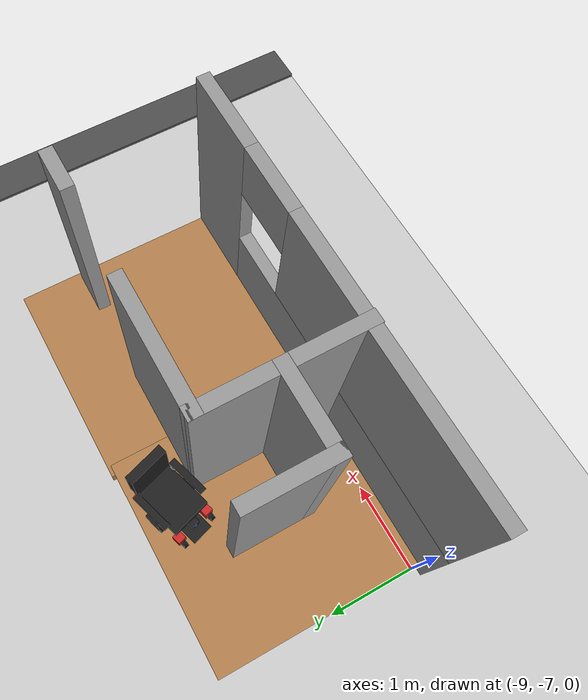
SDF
<sdf version="1.6">
 <world name="default">
  <model name="ground_plane">
   <static>1</static>
   <link name="link">
    <collision name="collision">
     <geometry><plane><normal>0 0 1</normal><size>100 100</size></plane></geometry>
     <surface>
      <contact><collide_bitmask>65535</collide_bitmask></contact>
      <friction><ode><mu>100</mu><mu2>50</mu2></ode></friction>
     </surface>
    </collision>
    <visual name="visual">
     <cast_shadows>0</cast_shadows>
     <geometry><plane><normal>0 0 1</normal><size>100 100</size></plane></geometry>
     <material>
      <script><uri>file://media/materials/scripts/gazebo.material</uri><name>Gazebo/Grey</name></script>
     </material>
    </visual>
   </link>
  </model>
  <model name="my_wheelchair">
   <link name="base_link">
    <inertial>
     <pose>-0.034207 0 0.161841 0 -0 0</pose>
     <mass>1.90002</mass>
     <inertia>
      <ixx>0.262673</ixx>
      <ixy>-2.37357e-19</ixy>
      <ixz>0.0372307</ixz>
      <iyy>0.501077</iyy>
      <iyz>-7.85195e-19</iyz>
      <izz>0.433656</izz>
     </inertia>
    </inertial>
    <collision name="base_link_collision"><geometry><box><size>0.5 0.4 0.2</size></box></geometry></collision>
    <collision name="base_link_fixed_joint_lump__chair_pillar_collision_1">
     <pose>0 0 0.175 0 -0 0</pose>
     <geometry><cylinder><length>0.2</length><radius>0.075</radius></cylinder></geometry>
    </collision>
    <collision name="base_link_fixed_joint_lump__chair_seat_collision_2">
     <pose>0 0 0.275 0 -0 0</pose>
     <geometry><box><size>0.6 0.5 0.1</size></box></geometry>
    </collision>
    <collision name="base_link_fixed_joint_lump__arm_brace_left_collision_3">
     <pose>-0.2 0.225 0.375 0 -0 0</pose>
     <geometry><box><size>0.05 0.025 0.25</size></box></geometry>
    </collision>
    <collision name="base_link_fixed_joint_lump__arm_left_collision_4">
     <pose>0 0.25 0.5 0 -0 0</pose>
     <geometry><box><size>0.45 0.075 0.03</size></box></geometry>
    </collision>
    <collision name="base_link_fixed_joint_lump__arm_brace_right_collision_5">
     <pose>-0.2 -0.225 0.375 0 -0 0</pose>
     <geometry><box><size>0.05 0.025 0.25</size></box></geometry>
    </collision>
    <collision name="base_link_fixed_joint_lump__arm_right_collision_6">
     <pose>0 -0.25 0.5 0 -0 0</pose>
     <geometry><box><size>0.45 0.075 0.03</size></box></geometry>
    </collision>
    <collision name="base_link_fixed_joint_lump__chair_spine_collision_7">
     <pose>-0.3 0 0.375 0 -0 0</pose>
     <geometry><box><size>0.035 0.1 0.2</size></box></geometry>
    </collision>
    <collision name="base_link_fixed_joint_lump__chair_back_collision_8">
     <pose>-0.3 0 0.6 0 -0 0</pose>
     <geometry><box><size>0.2 0.25 0.6</size></box></geometry>
    </collision>
    <collision name="base_link_fixed_joint_lump__foot_rest_collision_9">
     <pose>0.35 0 -0.1 0 -0 0</pose>
     <geometry><box><size>0.2 0.25 0.01</size></box></geometry>
    </collision>
    <collision name="base_link_fixed_joint_lump__hokuyo_main_collision_10">
     <pose>0.3 0 0.1 0 -0 0</pose>
     <geometry><box><size>0.1 0.1 0.1</size></box></geometry>
    </collision>
    <collision name="base_link_fixed_joint_lump__hokuyo_main_pointer_collision_11">
     <pose>0.35 0 0.1 0 -0 0</pose>
     <geometry><sphere><radius>0.02</radius></sphere></geometry>
    </collision>
    <visual name="base_link_visual">
     <geometry><box><size>0.5 0.4 0.2</size></box></geometry>
     <material>
      <script><name>Gazebo/Red</name><uri>file://media/materials/scripts/gazebo.material</uri></script>
     </material>
    </visual>
    <visual name="base_link_fixed_joint_lump__chair_pillar_visual_1">
     <pose>0 0 0.175 0 -0 0</pose>
     <geometry><cylinder><length>0.2</length><radius>0.075</radius></cylinder></geometry>
    </visual>
    <visual name="base_link_fixed_joint_lump__chair_seat_visual_2">
     <pose>0 0 0.275 0 -0 0</pose>
     <geometry><box><size>0.6 0.45 0.1</size></box></geometry>
     <material>
      <script><name>Gazebo/Black</name><uri>file://media/materials/scripts/gazebo.material</uri></script>
     </material>
    </visual>
    <visual name="base_link_fixed_joint_lump__arm_brace_left_visual_3">
     <pose>-0.2 0.225 0.375 0 -0 0</pose>
     <geometry><box><size>0.05 0.03 0.25</size></box></geometry>
    </visual>
    <visual name="base_link_fixed_joint_lump__arm_left_visual_4">
     <pose>0 0.25 0.5 0 -0 0</pose>
     <geometry><box><size>0.45 0.075 0.03</size></box></geometry>
     <material>
      <script><name>Gazebo/Black</name><uri>file://media/materials/scripts/gazebo.material</uri></script>
     </material>
    </visual>
    <visual name="base_link_fixed_joint_lump__arm_brace_right_visual_5">
     <pose>-0.2 -0.225 0.375 0 -0 0</pose>
     <geometry><box><size>0.05 0.03 0.25</size></box></geometry>
    </visual>
    <visual name="base_link_fixed_joint_lump__arm_right_visual_6">
     <pose>0 -0.25 0.5 0 -0 0</pose>
     <geometry><box><size>0.45 0.075 0.03</size></box></geometry>
     <material>
      <script><name>Gazebo/Black</name><uri>file://media/materials/scripts/gazebo.material</uri></script>
     </material>
    </visual>
    <visual name="base_link_fixed_joint_lump__chair_spine_visual_7">
     <pose>-0.3 0 0.375 0 -0 0</pose>
     <geometry><box><size>0.035 0.1 0.2</size></box></geometry>
     <material>
      <script><name>Gazebo/Black</name><uri>file://media/materials/scripts/gazebo.material</uri></script>
     </material>
    </visual>
    <visual name="base_link_fixed_joint_lump__chair_back_visual_8">
     <pose>-0.3 0 0.6 0 -0 0</pose>
     <geometry><box><size>0.1 0.45 0.5</size></box></geometry>
     <material>
      <script><name>Gazebo/Black</name><uri>file://media/materials/scripts/gazebo.material</uri></script>
     </material>
    </visual>
    <visual name="base_link_fixed_joint_lump__foot_rest_visual_9">
     <pose>0.35 0 -0.1 0 -0 0</pose>
     <geometry><box><size>0.2 0.25 0.01</size></box></geometry>
     <material>
      <script><name>Gazebo/Black</name><uri>file://media/materials/scripts/gazebo.material</uri></script>
     </material>
    </visual>
    <visual name="base_link_fixed_joint_lump__hokuyo_main_visual_10">
     <pose>0.3 0 0.1 0 -0 0</pose>
     <geometry><box><size>0.1 0.1 0.1</size></box></geometry>
     <material>
      <script><name>Gazebo/Black</name><uri>file://media/materials/scripts/gazebo.material</uri></script>
     </material>
    </visual>
    <visual name="base_link_fixed_joint_lump__hokuyo_main_pointer_visual_11">
     <pose>0.35 0 0.1 0 -0 0</pose>
     <geometry><sphere><radius>0.02</radius></sphere></geometry>
     <material>
      <script><name>Gazebo/Blue</name><uri>file://media/materials/scripts/gazebo.material</uri></script>
     </material>
    </visual>
    <sensor name="head_hokuyo_sensor" type="ray">
     <visualize>0</visualize>
     <update_rate>40</update_rate>
     <ray>
      <scan>
       <horizontal>
        <samples>720</samples>
        <resolution>1</resolution>
        <min_angle>-1.5708</min_angle>
        <max_angle>1.5708</max_angle>
       </horizontal>
       <vertical><samples>1</samples><min_angle>0</min_angle><max_angle>0</max_angle></vertical>
      </scan>
      <range><min>0.1</min><max>30</max><resolution>0.01</resolution></range>
      <noise><type>gaussian</type><mean>0</mean><stddev>0.01</stddev></noise>
     </ray>
     <plugin name="gazebo_ros_head_hokuyo_controller" filename="libgazebo_ros_laser.so">
      <topicName>scan</topicName>
      <frameName>hokuyo_main</frameName>
      <robotNamespace>/</robotNamespace>
     </plugin>
     <pose>0.3 0 0.1 0 -0 0</pose>
    </sensor>
   </link>
   <link name="back_left_caster">
    <pose>-0.3 0.2 -0.05 0 -0 0</pose>
    <inertial>
     <mass>0.1</mass>
     <inertia><ixx>0.00083</ixx><ixy>0</ixy><ixz>0</ixz><iyy>0.00083</iyy><iyz>0</iyz><izz>0.000167</izz></inertia>
    </inertial>
    <collision name="back_left_caster_collision">
     <geometry><box><size>0.1 0.1 0.15</size></box></geometry>
    </collision>
    <visual name="back_left_caster_visual">
     <geometry><box><size>0.1 0.1 0.15</size></box></geometry>
     <material>
      <script><name>Gazebo/Red</name><uri>file://media/materials/scripts/gazebo.material</uri></script>
     </material>
    </visual>
   </link>
   <joint name="back_left_caster_joint" type="revolute">
    <child>back_left_caster</child>
    <parent>base_link</parent>
    <axis>
     <xyz>0 0 1</xyz>
     <limit><lower>-1e+16</lower><upper>1e+16</upper></limit>
     <dynamics><spring_reference>0</spring_reference><spring_stiffness>0</spring_stiffness></dynamics>
     <use_parent_model_frame>1</use_parent_model_frame>
    </axis>
   </joint>
   <link name="back_left_wheel">
    <pose>-0.25 0.2 -0.125 -1.5708 0 0</pose>
    <inertial>
     <mass>0.1</mass>
     <inertia>
      <ixx>5.1458e-05</ixx>
      <ixy>0</ixy>
      <ixz>0</ixz>
      <iyy>5.1458e-05</iyy>
      <iyz>0</iyz>
      <izz>6.125e-05</izz>
     </inertia>
    </inertial>
    <collision name="back_left_wheel_collision">
     <geometry><cylinder><length>0.05</length><radius>0.065</radius></cylinder></geometry>
    </collision>
    <visual name="back_left_wheel_visual">
     <geometry><cylinder><length>0.05</length><radius>0.065</radius></cylinder></geometry>
     <material>
      <script><name>Gazebo/Black</name><uri>file://media/materials/scripts/gazebo.material</uri></script>
     </material>
    </visual>
   </link>
   <joint name="back_left_wheel_joint" type="revolute">
    <child>back_left_wheel</child>
    <parent>back_left_caster</parent>
    <axis>
     <xyz>0 1 -4e-06</xyz>
     <limit><lower>-1e+16</lower><upper>1e+16</upper></limit>
     <dynamics><spring_reference>0</spring_reference><spring_stiffness>0</spring_stiffness></dynamics>
     <use_parent_model_frame>1</use_parent_model_frame>
    </axis>
   </joint>
   <link name="back_right_caster">
    <pose>-0.3 -0.2 -0.05 0 -0 0</pose>
    <inertial>
     <mass>0.1</mass>
     <inertia><ixx>0.00083</ixx><ixy>0</ixy><ixz>0</ixz><iyy>0.00083</iyy><iyz>0</iyz><izz>0.000167</izz></inertia>
    </inertial>
    <collision name="back_right_caster_collision">
     <geometry><box><size>0.1 0.1 0.15</size></box></geometry>
    </collision>
    <visual name="back_right_caster_visual">
     <geometry><box><size>0.1 0.1 0.15</size></box></geometry>
     <material>
      <script><name>Gazebo/Red</name><uri>file://media/materials/scripts/gazebo.material</uri></script>
     </material>
    </visual>
   </link>
   <joint name="back_right_caster_joint" type="revolute">
    <child>back_right_caster</child>
    <parent>base_link</parent>
    <axis>
     <xyz>0 0 1</xyz>
     <limit><lower>-1e+16</lower><upper>1e+16</upper></limit>
     <dynamics><spring_reference>0</spring_reference><spring_stiffness>0</spring_stiffness></dynamics>
     <use_parent_model_frame>1</use_parent_model_frame>
    </axis>
   </joint>
   <link name="back_right_wheel">
    <pose>-0.25 -0.2 -0.125 -1.5708 0 0</pose>
    <inertial>
     <mass>0.1</mass>
     <inertia>
      <ixx>5.1458e-05</ixx>
      <ixy>0</ixy>
      <ixz>0</ixz>
      <iyy>5.1458e-05</iyy>
      <iyz>0</iyz>
      <izz>6.125e-05</izz>
     </inertia>
    </inertial>
    <collision name="back_right_wheel_collision">
     <geometry><cylinder><length>0.05</length><radius>0.065</radius></cylinder></geometry>
    </collision>
    <visual name="back_right_wheel_visual">
     <geometry><cylinder><length>0.05</length><radius>0.065</radius></cylinder></geometry>
     <material>
      <script><name>Gazebo/Black</name><uri>file://media/materials/scripts/gazebo.material</uri></script>
     </material>
    </visual>
   </link>
   <joint name="back_right_wheel_joint" type="revolute">
    <child>back_right_wheel</child>
    <parent>back_right_caster</parent>
    <axis>
     <xyz>0 1 -4e-06</xyz>
     <limit><lower>-1e+16</lower><upper>1e+16</upper></limit>
     <dynamics><spring_reference>0</spring_reference><spring_stiffness>0</spring_stiffness></dynamics>
     <use_parent_model_frame>1</use_parent_model_frame>
    </axis>
   </joint>
   <link name="front_left_caster">
    <pose>0.3 0.2 -0.05 0 -0 0</pose>
    <inertial>
     <mass>0.1</mass>
     <inertia><ixx>0.00083</ixx><ixy>0</ixy><ixz>0</ixz><iyy>0.00083</iyy><iyz>0</iyz><izz>0.000167</izz></inertia>
    </inertial>
    <collision name="front_left_caster_collision">
     <geometry><box><size>0.1 0.1 0.15</size></box></geometry>
    </collision>
    <visual name="front_left_caster_visual">
     <geometry><box><size>0.1 0.1 0.15</size></box></geometry>
     <material>
      <script><name>Gazebo/Red</name><uri>file://media/materials/scripts/gazebo.material</uri></script>
     </material>
    </visual>
   </link>
   <joint name="front_left_caster_joint" type="revolute">
    <child>front_left_caster</child>
    <parent>base_link</parent>
    <axis>
     <xyz>0 0 1</xyz>
     <limit><lower>-1e+16</lower><upper>1e+16</upper></limit>
     <dynamics><spring_reference>0</spring_reference><spring_stiffness>0</spring_stiffness></dynamics>
     <use_parent_model_frame>1</use_parent_model_frame>
    </axis>
   </joint>
   <link name="front_left_wheel">
    <pose>0.35 0.2 -0.125 -1.5708 0 0</pose>
    <inertial>
     <mass>0.1</mass>
     <inertia>
      <ixx>5.1458e-05</ixx>
      <ixy>0</ixy>
      <ixz>0</ixz>
      <iyy>5.1458e-05</iyy>
      <iyz>0</iyz>
      <izz>6.125e-05</izz>
     </inertia>
    </inertial>
    <collision name="front_left_wheel_collision">
     <geometry><cylinder><length>0.05</length><radius>0.065</radius></cylinder></geometry>
    </collision>
    <visual name="front_left_wheel_visual">
     <geometry><cylinder><length>0.05</length><radius>0.065</radius></cylinder></geometry>
     <material>
      <script><name>Gazebo/Black</name><uri>file://media/materials/scripts/gazebo.material</uri></script>
     </material>
    </visual>
   </link>
   <joint name="front_left_wheel_joint" type="revolute">
    <child>front_left_wheel</child>
    <parent>front_left_caster</parent>
    <axis>
     <xyz>0 1 -4e-06</xyz>
     <limit><lower>-1e+16</lower><upper>1e+16</upper></limit>
     <dynamics><spring_reference>0</spring_reference><spring_stiffness>0</spring_stiffness></dynamics>
     <use_parent_model_frame>1</use_parent_model_frame>
    </axis>
   </joint>
   <link name="front_right_caster">
    <pose>0.3 -0.2 -0.05 0 -0 0</pose>
    <inertial>
     <mass>0.1</mass>
     <inertia><ixx>0.00083</ixx><ixy>0</ixy><ixz>0</ixz><iyy>0.00083</iyy><iyz>0</iyz><izz>0.000167</izz></inertia>
    </inertial>
    <collision name="front_right_caster_collision">
     <geometry><box><size>0.1 0.1 0.15</size></box></geometry>
    </collision>
    <visual name="front_right_caster_visual">
     <geometry><box><size>0.1 0.1 0.15</size></box></geometry>
     <material>
      <script><name>Gazebo/Red</name><uri>file://media/materials/scripts/gazebo.material</uri></script>
     </material>
    </visual>
   </link>
   <joint name="front_right_caster_joint" type="revolute">
    <child>front_right_caster</child>
    <parent>base_link</parent>
    <axis>
     <xyz>0 0 1</xyz>
     <limit><lower>-1e+16</lower><upper>1e+16</upper></limit>
     <dynamics><spring_reference>0</spring_reference><spring_stiffness>0</spring_stiffness></dynamics>
     <use_parent_model_frame>1</use_parent_model_frame>
    </axis>
   </joint>
   <link name="front_right_wheel">
    <pose>0.35 -0.2 -0.125 -1.5708 0 0</pose>
    <inertial>
     <mass>0.1</mass>
     <inertia>
      <ixx>5.1458e-05</ixx>
      <ixy>0</ixy>
      <ixz>0</ixz>
      <iyy>5.1458e-05</iyy>
      <iyz>0</iyz>
      <izz>6.125e-05</izz>
     </inertia>
    </inertial>
    <collision name="front_right_wheel_collision">
     <geometry><cylinder><length>0.05</length><radius>0.065</radius></cylinder></geometry>
    </collision>
    <visual name="front_right_wheel_visual">
     <geometry><cylinder><length>0.05</length><radius>0.065</radius></cylinder></geometry>
     <material>
      <script><name>Gazebo/Black</name><uri>file://media/materials/scripts/gazebo.material</uri></script>
     </material>
    </visual>
   </link>
   <joint name="front_right_wheel_joint" type="revolute">
    <child>front_right_wheel</child>
    <parent>front_right_caster</parent>
    <axis>
     <xyz>0 1 -4e-06</xyz>
     <limit><lower>-1e+16</lower><upper>1e+16</upper></limit>
     <dynamics><spring_reference>0</spring_reference><spring_stiffness>0</spring_stiffness></dynamics>
     <use_parent_model_frame>1</use_parent_model_frame>
    </axis>
   </joint>
   <link name="left_wheel">
    <pose>0 0.25 -0.065 -1.5708 0 0</pose>
    <inertial>
     <mass>0.1</mass>
     <inertia>
      <ixx>5.1458e-05</ixx>
      <ixy>0</ixy>
      <ixz>0</ixz>
      <iyy>5.1458e-05</iyy>
      <iyz>0</iyz>
      <izz>6.125e-05</izz>
     </inertia>
    </inertial>
    <collision name="left_wheel_collision">
     <geometry><cylinder><length>0.075</length><radius>0.125</radius></cylinder></geometry>
    </collision>
    <visual name="left_wheel_visual">
     <geometry><cylinder><length>0.075</length><radius>0.125</radius></cylinder></geometry>
     <material>
      <script><name>Gazebo/Black</name><uri>file://media/materials/scripts/gazebo.material</uri></script>
     </material>
    </visual>
   </link>
   <joint name="left_wheel_joint" type="revolute">
    <child>left_wheel</child>
    <parent>base_link</parent>
    <axis>
     <xyz>0 1 -4e-06</xyz>
     <limit><lower>-1e+16</lower><upper>1e+16</upper></limit>
     <dynamics><spring_reference>0</spring_reference><spring_stiffness>0</spring_stiffness></dynamics>
     <use_parent_model_frame>1</use_parent_model_frame>
    </axis>
   </joint>
   <link name="right_wheel">
    <pose>0 -0.25 -0.065 -1.5708 0 0</pose>
    <inertial>
     <mass>0.1</mass>
     <inertia>
      <ixx>5.1458e-05</ixx>
      <ixy>0</ixy>
      <ixz>0</ixz>
      <iyy>5.1458e-05</iyy>
      <iyz>0</iyz>
      <izz>6.125e-05</izz>
     </inertia>
    </inertial>
    <collision name="right_wheel_collision">
     <geometry><cylinder><length>0.075</length><radius>0.125</radius></cylinder></geometry>
    </collision>
    <visual name="right_wheel_visual">
     <geometry><cylinder><length>0.075</length><radius>0.125</radius></cylinder></geometry>
     <material>
      <script><name>Gazebo/Black</name><uri>file://media/materials/scripts/gazebo.material</uri></script>
     </material>
    </visual>
   </link>
   <joint name="right_wheel_joint" type="revolute">
    <child>right_wheel</child>
    <parent>base_link</parent>
    <axis>
     <xyz>0 1 -4e-06</xyz>
     <limit><lower>-1e+16</lower><upper>1e+16</upper></limit>
     <dynamics><spring_reference>0</spring_reference><spring_stiffness>0</spring_stiffness></dynamics>
     <use_parent_model_frame>1</use_parent_model_frame>
    </axis>
   </joint>
   <plugin name="joint_state_publisher" filename="libgazebo_ros_joint_state_publisher.so">
    <jointName>front_left_caster_joint, front_left_wheel_joint</jointName>
    <robotNamespace>/</robotNamespace>
   </plugin>
   <plugin name="joint_state_publisher" filename="libgazebo_ros_joint_state_publisher.so">
    <jointName>front_right_caster_joint, front_right_wheel_joint</jointName>
    <robotNamespace>/</robotNamespace>
   </plugin>
   <plugin name="joint_state_publisher" filename="libgazebo_ros_joint_state_publisher.so">
    <jointName>back_left_caster_joint, back_left_wheel_joint</jointName>
    <robotNamespace>/</robotNamespace>
   </plugin>
   <plugin name="joint_state_publisher" filename="libgazebo_ros_joint_state_publisher.so">
    <jointName>back_right_caster_joint, back_right_wheel_joint</jointName>
    <robotNamespace>/</robotNamespace>
   </plugin>
   <static>0</static>
   <plugin name="differential_drive_controller" filename="libgazebo_ros_diff_drive.so">
    <leftJoint>right_wheel_joint</leftJoint>
    <rightJoint>left_wheel_joint</rightJoint>
    <robotBaseFrame>base_link</robotBaseFrame>
    <wheelSeparation>0.25</wheelSeparation>
    <wheelDiameter>0.07</wheelDiameter>
    <publishWheelJointState>true</publishWheelJointState>
    <robotNamespace>/</robotNamespace>
   </plugin>
   <pose>-7.22746 -5.05903 0.345 0 -4e-06 -2.83679</pose>
  </model>
  <model name="world_frame">
   <link name="Wall_138">
    <pose>-20.9646 -4.993 0 0 -0 3.14159</pose>
    <visual name="Wall_138_Visual_0">
     <pose>-2.02434 0 1.25 0 -0 0</pose>
     <geometry><box><size>0.951328 0.15 2.5</size></box></geometry>
     <material>
      <script><uri>file://media/materials/scripts/gazebo.material</uri><name>Gazebo/Grey</name></script>
      <ambient>1 1 1 1</ambient>
      <shader type="pixel"/>
      <diffuse>0.7 0.7 0.7 1</diffuse>
      <specular>0.01 0.01 0.01 1</specular>
      <emissive>0 0 0 1</emissive>
     </material>
     <meta><layer>0</layer></meta>
    </visual>
    <visual name="Wall_138_Visual_1">
     <pose>0.475664 0 0.5 0 -0 0</pose>
     <geometry><box><size>4.04867 0.15 1</size></box></geometry>
     <material>
      <script><uri>file://media/materials/scripts/gazebo.material</uri><name>Gazebo/Grey</name></script>
      <ambient>1 1 1 1</ambient>
      <shader type="pixel"/>
      <diffuse>0.7 0.7 0.7 1</diffuse>
      <specular>0.01 0.01 0.01 1</specular>
      <emissive>0 0 0 1</emissive>
     </material>
     <meta><layer>0</layer></meta>
    </visual>
    <visual name="Wall_138_Visual_2">
     <pose>0.875664 0 1.75 0 -0 0</pose>
     <geometry><box><size>3.24867 0.15 1.5</size></box></geometry>
     <material>
      <script><uri>file://media/materials/scripts/gazebo.material</uri><name>Gazebo/Grey</name></script>
      <ambient>1 1 1 1</ambient>
      <shader type="pixel"/>
      <diffuse>0.7 0.7 0.7 1</diffuse>
      <specular>0.01 0.01 0.01 1</specular>
      <emissive>0 0 0 1</emissive>
     </material>
     <meta><layer>0</layer></meta>
    </visual>
    <visual name="Wall_138_Visual_3">
     <pose>-1.14867 0 2.15 0 -0 0</pose>
     <geometry><box><size>0.8 0.15 0.7</size></box></geometry>
     <material>
      <script><uri>file://media/materials/scripts/gazebo.material</uri><name>Gazebo/Grey</name></script>
      <ambient>1 1 1 1</ambient>
      <shader type="pixel"/>
      <diffuse>0.7 0.7 0.7 1</diffuse>
      <specular>0.01 0.01 0.01 1</specular>
      <emissive>0 0 0 1</emissive>
     </material>
     <meta><layer>0</layer></meta>
    </visual>
    <collision name="Wall_138_Collision_0">
     <pose>-2.02434 0 1.25 0 -0 0</pose>
     <geometry><box><size>0.951328 0.15 2.5</size></box></geometry>
     <surface>
      <friction>
       <ode><mu>1</mu><mu2>1</mu2><fdir1>0 0 0</fdir1><slip1>0</slip1><slip2>0</slip2></ode>
       <torsional>
        <coefficient>1</coefficient>
        <patch_radius>0</patch_radius>
        <surface_radius>0</surface_radius>
        <use_patch_radius>1</use_patch_radius>
        <ode><slip>0</slip></ode>
       </torsional>
      </friction>
      <bounce><restitution_coefficient>0</restitution_coefficient><threshold>1e+06</threshold></bounce>
      <contact>
       <collide_without_contact>0</collide_without_contact>
       <collide_without_contact_bitmask>1</collide_without_contact_bitmask>
       <collide_bitmask>1</collide_bitmask>
       <ode>
        <soft_cfm>0</soft_cfm>
        <soft_erp>0.2</soft_erp>
        <kp>1e+13</kp>
        <kd>1</kd>
        <max_vel>0.01</max_vel>
        <min_depth>0</min_depth>
       </ode>
       <bullet>
        <split_impulse>1</split_impulse>
        <split_impulse_penetration_threshold>-0.01</split_impulse_penetration_threshold>
        <soft_cfm>0</soft_cfm>
        <soft_erp>0.2</soft_erp>
        <kp>1e+13</kp>
        <kd>1</kd>
       </bullet>
      </contact>
     </surface>
    </collision>
    <collision name="Wall_138_Collision_1">
     <pose>0.475664 0 0.5 0 -0 0</pose>
     <geometry><box><size>4.04867 0.15 1</size></box></geometry>
     <surface>
      <friction>
       <ode><mu>1</mu><mu2>1</mu2><fdir1>0 0 0</fdir1><slip1>0</slip1><slip2>0</slip2></ode>
       <torsional>
        <coefficient>1</coefficient>
        <patch_radius>0</patch_radius>
        <surface_radius>0</surface_radius>
        <use_patch_radius>1</use_patch_radius>
        <ode><slip>0</slip></ode>
       </torsional>
      </friction>
      <bounce><restitution_coefficient>0</restitution_coefficient><threshold>1e+06</threshold></bounce>
      <contact>
       <collide_without_contact>0</collide_without_contact>
       <collide_without_contact_bitmask>1</collide_without_contact_bitmask>
       <collide_bitmask>1</collide_bitmask>
       <ode>
        <soft_cfm>0</soft_cfm>
        <soft_erp>0.2</soft_erp>
        <kp>1e+13</kp>
        <kd>1</kd>
        <max_vel>0.01</max_vel>
        <min_depth>0</min_depth>
       </ode>
       <bullet>
        <split_impulse>1</split_impulse>
        <split_impulse_penetration_threshold>-0.01</split_impulse_penetration_threshold>
        <soft_cfm>0</soft_cfm>
        <soft_erp>0.2</soft_erp>
        <kp>1e+13</kp>
        <kd>1</kd>
       </bullet>
      </contact>
     </surface>
    </collision>
    <collision name="Wall_138_Collision_3">
     <pose>-1.14867 0 2.15 0 -0 0</pose>
     <geometry><box><size>0.8 0.15 0.7</size></box></geometry>
     <surface>
      <friction>
       <ode><mu>1</mu><mu2>1</mu2><fdir1>0 0 0</fdir1><slip1>0</slip1><slip2>0</slip2></ode>
       <torsional>
        <coefficient>1</coefficient>
        <patch_radius>0</patch_radius>
        <surface_radius>0</surface_radius>
        <use_patch_radius>1</use_patch_radius>
        <ode><slip>0</slip></ode>
       </torsional>
      </friction>
      <bounce><restitution_coefficient>0</restitution_coefficient><threshold>1e+06</threshold></bounce>
      <contact>
       <collide_without_contact>0</collide_without_contact>
       <collide_without_contact_bitmask>1</collide_without_contact_bitmask>
       <collide_bitmask>1</collide_bitmask>
       <ode>
        <soft_cfm>0</soft_cfm>
        <soft_erp>0.2</soft_erp>
        <kp>1e+13</kp>
        <kd>1</kd>
        <max_vel>0.01</max_vel>
        <min_depth>0</min_depth>
       </ode>
       <bullet>
        <split_impulse>1</split_impulse>
        <split_impulse_penetration_threshold>-0.01</split_impulse_penetration_threshold>
        <soft_cfm>0</soft_cfm>
        <soft_erp>0.2</soft_erp>
        <kp>1e+13</kp>
        <kd>1</kd>
       </bullet>
      </contact>
     </surface>
    </collision>
    <collision name="Wall_138_Collision_2">
     <pose>0.875664 0 1.75 0 -0 0</pose>
     <geometry><box><size>3.24867 0.15 1.5</size></box></geometry>
     <surface>
      <friction>
       <ode><mu>1</mu><mu2>1</mu2><fdir1>0 0 0</fdir1><slip1>0</slip1><slip2>0</slip2></ode>
       <torsional>
        <coefficient>1</coefficient>
        <patch_radius>0</patch_radius>
        <surface_radius>0</surface_radius>
        <use_patch_radius>1</use_patch_radius>
        <ode><slip>0</slip></ode>
       </torsional>
      </friction>
      <bounce><restitution_coefficient>0</restitution_coefficient><threshold>1e+06</threshold></bounce>
      <contact>
       <collide_without_contact>0</collide_without_contact>
       <collide_without_contact_bitmask>1</collide_without_contact_bitmask>
       <collide_bitmask>1</collide_bitmask>
       <ode>
        <soft_cfm>0</soft_cfm>
        <soft_erp>0.2</soft_erp>
        <kp>1e+13</kp>
        <kd>1</kd>
        <max_vel>0.01</max_vel>
        <min_depth>0</min_depth>
       </ode>
       <bullet>
        <split_impulse>1</split_impulse>
        <split_impulse_penetration_threshold>-0.01</split_impulse_penetration_threshold>
        <soft_cfm>0</soft_cfm>
        <soft_erp>0.2</soft_erp>
        <kp>1e+13</kp>
        <kd>1</kd>
       </bullet>
      </contact>
     </surface>
    </collision>
   </link>
   <link name="Wall_146">
    <pose>-21.8665 -4.15688 0 0 -0 0</pose>
    <visual name="Wall_146_Visual">
     <pose>0 0 1.25 0 -0 0</pose>
     <geometry><box><size>1 0.15 2.5</size></box></geometry>
     <material>
      <script><uri>file://media/materials/scripts/gazebo.material</uri><name>Gazebo/Grey</name></script>
      <ambient>1 1 1 1</ambient>
      <shader type="pixel"/>
      <diffuse>0.7 0.7 0.7 1</diffuse>
      <specular>0.01 0.01 0.01 1</specular>
      <emissive>0 0 0 1</emissive>
     </material>
     <meta><layer>0</layer></meta>
    </visual>
    <collision name="Wall_146_Collision">
     <pose>0 0 1.25 0 -0 0</pose>
     <geometry><box><size>1 0.15 2.5</size></box></geometry>
     <surface>
      <friction>
       <ode><mu>1</mu><mu2>1</mu2><fdir1>0 0 0</fdir1><slip1>0</slip1><slip2>0</slip2></ode>
       <torsional>
        <coefficient>1</coefficient>
        <patch_radius>0</patch_radius>
        <surface_radius>0</surface_radius>
        <use_patch_radius>1</use_patch_radius>
        <ode><slip>0</slip></ode>
       </torsional>
      </friction>
      <bounce><restitution_coefficient>0</restitution_coefficient><threshold>1e+06</threshold></bounce>
      <contact>
       <collide_without_contact>0</collide_without_contact>
       <collide_without_contact_bitmask>1</collide_without_contact_bitmask>
       <collide_bitmask>1</collide_bitmask>
       <ode>
        <soft_cfm>0</soft_cfm>
        <soft_erp>0.2</soft_erp>
        <kp>1e+13</kp>
        <kd>1</kd>
        <max_vel>0.01</max_vel>
        <min_depth>0</min_depth>
       </ode>
       <bullet>
        <split_impulse>1</split_impulse>
        <split_impulse_penetration_threshold>-0.01</split_impulse_penetration_threshold>
        <soft_cfm>0</soft_cfm>
        <soft_erp>0.2</soft_erp>
        <kp>1e+13</kp>
        <kd>1</kd>
       </bullet>
      </contact>
     </surface>
    </collision>
   </link>
   <link name="Wall_147">
    <pose>-21.4415 -3.73188 0 0 -0 1.5708</pose>
    <visual name="Wall_147_Visual">
     <pose>0 0 1.25 0 -0 0</pose>
     <geometry><box><size>1 0.15 2.5</size></box></geometry>
     <material>
      <script><uri>file://media/materials/scripts/gazebo.material</uri><name>Gazebo/Grey</name></script>
      <ambient>1 1 1 1</ambient>
      <shader type="pixel"/>
      <diffuse>0.7 0.7 0.7 1</diffuse>
      <specular>0.01 0.01 0.01 1</specular>
      <emissive>0 0 0 1</emissive>
     </material>
     <meta><layer>0</layer></meta>
    </visual>
    <collision name="Wall_147_Collision">
     <pose>0 0 1.25 0 -0 0</pose>
     <geometry><box><size>1 0.15 2.5</size></box></geometry>
     <surface>
      <friction>
       <ode><mu>1</mu><mu2>1</mu2><fdir1>0 0 0</fdir1><slip1>0</slip1><slip2>0</slip2></ode>
       <torsional>
        <coefficient>1</coefficient>
        <patch_radius>0</patch_radius>
        <surface_radius>0</surface_radius>
        <use_patch_radius>1</use_patch_radius>
        <ode><slip>0</slip></ode>
       </torsional>
      </friction>
      <bounce><restitution_coefficient>0</restitution_coefficient><threshold>1e+06</threshold></bounce>
      <contact>
       <collide_without_contact>0</collide_without_contact>
       <collide_without_contact_bitmask>1</collide_without_contact_bitmask>
       <collide_bitmask>1</collide_bitmask>
       <ode>
        <soft_cfm>0</soft_cfm>
        <soft_erp>0.2</soft_erp>
        <kp>1e+13</kp>
        <kd>1</kd>
        <max_vel>0.01</max_vel>
        <min_depth>0</min_depth>
       </ode>
       <bullet>
        <split_impulse>1</split_impulse>
        <split_impulse_penetration_threshold>-0.01</split_impulse_penetration_threshold>
        <soft_cfm>0</soft_cfm>
        <soft_erp>0.2</soft_erp>
        <kp>1e+13</kp>
        <kd>1</kd>
       </bullet>
      </contact>
     </surface>
    </collision>
   </link>
   <link name="Wall_150">
    <pose>-22.2915 -3.73188 0 0 -0 1.5708</pose>
    <visual name="Wall_150_Visual">
     <pose>0 0 1.25 0 -0 0</pose>
     <geometry><box><size>1 0.15 2.5</size></box></geometry>
     <material>
      <script><uri>file://media/materials/scripts/gazebo.material</uri><name>Gazebo/Grey</name></script>
      <ambient>1 1 1 1</ambient>
      <shader type="pixel"/>
      <diffuse>0.7 0.7 0.7 1</diffuse>
      <specular>0.01 0.01 0.01 1</specular>
      <emissive>0 0 0 1</emissive>
     </material>
     <meta><layer>0</layer></meta>
    </visual>
    <collision name="Wall_150_Collision">
     <pose>0 0 1.25 0 -0 0</pose>
     <geometry><box><size>1 0.15 2.5</size></box></geometry>
     <surface>
      <friction>
       <ode><mu>1</mu><mu2>1</mu2><fdir1>0 0 0</fdir1><slip1>0</slip1><slip2>0</slip2></ode>
       <torsional>
        <coefficient>1</coefficient>
        <patch_radius>0</patch_radius>
        <surface_radius>0</surface_radius>
        <use_patch_radius>1</use_patch_radius>
        <ode><slip>0</slip></ode>
       </torsional>
      </friction>
      <bounce><restitution_coefficient>0</restitution_coefficient><threshold>1e+06</threshold></bounce>
      <contact>
       <collide_without_contact>0</collide_without_contact>
       <collide_without_contact_bitmask>1</collide_without_contact_bitmask>
       <collide_bitmask>1</collide_bitmask>
       <ode>
        <soft_cfm>0</soft_cfm>
        <soft_erp>0.2</soft_erp>
        <kp>1e+13</kp>
        <kd>1</kd>
        <max_vel>0.01</max_vel>
        <min_depth>0</min_depth>
       </ode>
       <bullet>
        <split_impulse>1</split_impulse>
        <split_impulse_penetration_threshold>-0.01</split_impulse_penetration_threshold>
        <soft_cfm>0</soft_cfm>
        <soft_erp>0.2</soft_erp>
        <kp>1e+13</kp>
        <kd>1</kd>
       </bullet>
      </contact>
     </surface>
    </collision>
   </link>
   <link name="Wall_152">
    <pose>-21.4415 -4.58188 0 0 0 -1.5708</pose>
    <visual name="Wall_152_Visual">
     <pose>0 0 1.25 0 -0 0</pose>
     <geometry><box><size>1 0.15 2.5</size></box></geometry>
     <material>
      <script><uri>file://media/materials/scripts/gazebo.material</uri><name>Gazebo/Grey</name></script>
      <ambient>1 1 1 1</ambient>
      <shader type="pixel"/>
      <diffuse>0.7 0.7 0.7 1</diffuse>
      <specular>0.01 0.01 0.01 1</specular>
      <emissive>0 0 0 1</emissive>
     </material>
     <meta><layer>0</layer></meta>
    </visual>
    <collision name="Wall_152_Collision">
     <pose>0 0 1.25 0 -0 0</pose>
     <geometry><box><size>1 0.15 2.5</size></box></geometry>
     <surface>
      <friction>
       <ode><mu>1</mu><mu2>1</mu2><fdir1>0 0 0</fdir1><slip1>0</slip1><slip2>0</slip2></ode>
       <torsional>
        <coefficient>1</coefficient>
        <patch_radius>0</patch_radius>
        <surface_radius>0</surface_radius>
        <use_patch_radius>1</use_patch_radius>
        <ode><slip>0</slip></ode>
       </torsional>
      </friction>
      <bounce><restitution_coefficient>0</restitution_coefficient><threshold>1e+06</threshold></bounce>
      <contact>
       <collide_without_contact>0</collide_without_contact>
       <collide_without_contact_bitmask>1</collide_without_contact_bitmask>
       <collide_bitmask>1</collide_bitmask>
       <ode>
        <soft_cfm>0</soft_cfm>
        <soft_erp>0.2</soft_erp>
        <kp>1e+13</kp>
        <kd>1</kd>
        <max_vel>0.01</max_vel>
        <min_depth>0</min_depth>
       </ode>
       <bullet>
        <split_impulse>1</split_impulse>
        <split_impulse_penetration_threshold>-0.01</split_impulse_penetration_threshold>
        <soft_cfm>0</soft_cfm>
        <soft_erp>0.2</soft_erp>
        <kp>1e+13</kp>
        <kd>1</kd>
       </bullet>
      </contact>
     </surface>
    </collision>
   </link>
   <link name="Wall_154">
    <pose>-20.7665 -3.30688 0 0 -0 0</pose>
    <visual name="Wall_154_Visual">
     <pose>0 0 1.25 0 -0 0</pose>
     <geometry><box><size>1.5 0.15 2.5</size></box></geometry>
     <material>
      <script><uri>file://media/materials/scripts/gazebo.material</uri><name>Gazebo/Grey</name></script>
      <ambient>1 1 1 1</ambient>
      <shader type="pixel"/>
      <diffuse>0.7 0.7 0.7 1</diffuse>
      <specular>0.01 0.01 0.01 1</specular>
      <emissive>0 0 0 1</emissive>
     </material>
     <meta><layer>0</layer></meta>
    </visual>
    <collision name="Wall_154_Collision">
     <pose>0 0 1.25 0 -0 0</pose>
     <geometry><box><size>1.5 0.15 2.5</size></box></geometry>
     <surface>
      <friction>
       <ode><mu>1</mu><mu2>1</mu2><fdir1>0 0 0</fdir1><slip1>0</slip1><slip2>0</slip2></ode>
       <torsional>
        <coefficient>1</coefficient>
        <patch_radius>0</patch_radius>
        <surface_radius>0</surface_radius>
        <use_patch_radius>1</use_patch_radius>
        <ode><slip>0</slip></ode>
       </torsional>
      </friction>
      <bounce><restitution_coefficient>0</restitution_coefficient><threshold>1e+06</threshold></bounce>
      <contact>
       <collide_without_contact>0</collide_without_contact>
       <collide_without_contact_bitmask>1</collide_without_contact_bitmask>
       <collide_bitmask>1</collide_bitmask>
       <ode>
        <soft_cfm>0</soft_cfm>
        <soft_erp>0.2</soft_erp>
        <kp>1e+13</kp>
        <kd>1</kd>
        <max_vel>0.01</max_vel>
        <min_depth>0</min_depth>
       </ode>
       <bullet>
        <split_impulse>1</split_impulse>
        <split_impulse_penetration_threshold>-0.01</split_impulse_penetration_threshold>
        <soft_cfm>0</soft_cfm>
        <soft_erp>0.2</soft_erp>
        <kp>1e+13</kp>
        <kd>1</kd>
       </bullet>
      </contact>
     </surface>
    </collision>
   </link>
   <link name="Wall_159">
    <pose>-18.7934 -3.30493 0 0 -0 3.14159</pose>
    <visual name="Wall_159_Visual">
     <pose>0 0 1.25 0 -0 0</pose>
     <geometry><box><size>0.5 0.15 2.5</size></box></geometry>
     <material>
      <script><uri>file://media/materials/scripts/gazebo.material</uri><name>Gazebo/Grey</name></script>
      <ambient>1 1 1 1</ambient>
      <shader type="pixel"/>
      <diffuse>0.7 0.7 0.7 1</diffuse>
      <specular>0.01 0.01 0.01 1</specular>
      <emissive>0 0 0 1</emissive>
     </material>
     <meta><layer>0</layer></meta>
    </visual>
    <collision name="Wall_159_Collision">
     <pose>0 0 1.25 0 -0 0</pose>
     <geometry><box><size>0.5 0.15 2.5</size></box></geometry>
     <surface>
      <friction>
       <ode><mu>1</mu><mu2>1</mu2><fdir1>0 0 0</fdir1><slip1>0</slip1><slip2>0</slip2></ode>
       <torsional>
        <coefficient>1</coefficient>
        <patch_radius>0</patch_radius>
        <surface_radius>0</surface_radius>
        <use_patch_radius>1</use_patch_radius>
        <ode><slip>0</slip></ode>
       </torsional>
      </friction>
      <bounce><restitution_coefficient>0</restitution_coefficient><threshold>1e+06</threshold></bounce>
      <contact>
       <collide_without_contact>0</collide_without_contact>
       <collide_without_contact_bitmask>1</collide_without_contact_bitmask>
       <collide_bitmask>1</collide_bitmask>
       <ode>
        <soft_cfm>0</soft_cfm>
        <soft_erp>0.2</soft_erp>
        <kp>1e+13</kp>
        <kd>1</kd>
        <max_vel>0.01</max_vel>
        <min_depth>0</min_depth>
       </ode>
       <bullet>
        <split_impulse>1</split_impulse>
        <split_impulse_penetration_threshold>-0.01</split_impulse_penetration_threshold>
        <soft_cfm>0</soft_cfm>
        <soft_erp>0.2</soft_erp>
        <kp>1e+13</kp>
        <kd>1</kd>
       </bullet>
      </contact>
     </surface>
    </collision>
   </link>
   <link name="Wall_229">
    <pose>-22.0965 -3.83383 0 0 0 -1.5708</pose>
    <visual name="Wall_229_Visual">
     <pose>0 0 0.0775 0 -0 0</pose>
     <geometry><box><size>2.625 2.5 0.155</size></box></geometry>
     <material>
      <script><uri>file://media/materials/scripts/gazebo.material</uri><name>Gazebo/Wood</name></script>
      <ambient>1 1 1 1</ambient>
      <shader type="pixel"/>
      <diffuse>1 1 1 1</diffuse>
      <specular>0.2 0.2 0.2 1</specular>
      <emissive>0 0 0 1</emissive>
     </material>
     <meta><layer>0</layer></meta>
    </visual>
    <collision name="Wall_229_Collision">
     <pose>0 0 0.0775 0 -0 0</pose>
     <geometry><box><size>2.625 2.5 0.155</size></box></geometry>
     <surface>
      <friction>
       <ode><mu>1</mu><mu2>1</mu2><fdir1>0 0 0</fdir1><slip1>0</slip1><slip2>0</slip2></ode>
       <torsional>
        <coefficient>1</coefficient>
        <patch_radius>0</patch_radius>
        <surface_radius>0</surface_radius>
        <use_patch_radius>1</use_patch_radius>
        <ode><slip>0</slip></ode>
       </torsional>
      </friction>
      <bounce><restitution_coefficient>0</restitution_coefficient><threshold>1e+06</threshold></bounce>
      <contact>
       <collide_without_contact>0</collide_without_contact>
       <collide_without_contact_bitmask>1</collide_without_contact_bitmask>
       <collide_bitmask>1</collide_bitmask>
       <ode>
        <soft_cfm>0</soft_cfm>
        <soft_erp>0.2</soft_erp>
        <kp>1e+13</kp>
        <kd>1</kd>
        <max_vel>0.01</max_vel>
        <min_depth>0</min_depth>
       </ode>
       <bullet>
        <split_impulse>1</split_impulse>
        <split_impulse_penetration_threshold>-0.01</split_impulse_penetration_threshold>
        <soft_cfm>0</soft_cfm>
        <soft_erp>0.2</soft_erp>
        <kp>1e+13</kp>
        <kd>1</kd>
       </bullet>
      </contact>
     </surface>
    </collision>
   </link>
   <link name="Wall_239">
    <pose>-19.7211 -3.79343 0 0 0 -1.5708</pose>
    <visual name="Wall_239_Visual">
     <pose>0 0 0.0775 0 -0 0</pose>
     <geometry><box><size>2.625 2.5 0.155</size></box></geometry>
     <material>
      <script><uri>file://media/materials/scripts/gazebo.material</uri><name>Gazebo/Wood</name></script>
      <ambient>1 1 1 1</ambient>
      <shader type="pixel"/>
      <diffuse>1 1 1 1</diffuse>
      <specular>0.2 0.2 0.2 1</specular>
      <emissive>0 0 0 1</emissive>
     </material>
     <meta><layer>0</layer></meta>
    </visual>
    <collision name="Wall_239_Collision">
     <pose>0 0 0.0775 0 -0 0</pose>
     <geometry><box><size>2.625 2.5 0.155</size></box></geometry>
     <surface>
      <friction>
       <ode><mu>1</mu><mu2>1</mu2><fdir1>0 0 0</fdir1><slip1>0</slip1><slip2>0</slip2></ode>
       <torsional>
        <coefficient>1</coefficient>
        <patch_radius>0</patch_radius>
        <surface_radius>0</surface_radius>
        <use_patch_radius>1</use_patch_radius>
        <ode><slip>0</slip></ode>
       </torsional>
      </friction>
      <bounce><restitution_coefficient>0</restitution_coefficient><threshold>1e+06</threshold></bounce>
      <contact>
       <collide_without_contact>0</collide_without_contact>
       <collide_without_contact_bitmask>1</collide_without_contact_bitmask>
       <collide_bitmask>1</collide_bitmask>
       <ode>
        <soft_cfm>0</soft_cfm>
        <soft_erp>0.2</soft_erp>
        <kp>1e+13</kp>
        <kd>1</kd>
        <max_vel>0.01</max_vel>
        <min_depth>0</min_depth>
       </ode>
       <bullet>
        <split_impulse>1</split_impulse>
        <split_impulse_penetration_threshold>-0.01</split_impulse_penetration_threshold>
        <soft_cfm>0</soft_cfm>
        <soft_erp>0.2</soft_erp>
        <kp>1e+13</kp>
        <kd>1</kd>
       </bullet>
      </contact>
     </surface>
    </collision>
   </link>
   <static>1</static>
   <pose>14.3624 -2.13506 0 0 -0 0</pose>
  </model>
  <model name="asphalt_plane">
   <static>1</static>
   <link name="link">
    <collision name="collision"><geometry><box><size>20 20 0.1</size></box></geometry></collision>
    <visual name="visual">
     <cast_shadows>0</cast_shadows>
     <geometry><box><size>20 20 0.1</size></box></geometry>
     <material>
      <script>
       <uri>model://asphalt_plane/materials/scripts</uri>
       <uri>model://asphalt_plane/materials/textures</uri>
       <name>vrc/asphalt</name>
      </script>
     </material>
    </visual>
   </link>
   <pose>7.45828 -1.78814 -0.021157 0 -0 0</pose>
  </model>
 </world>
</sdf>
